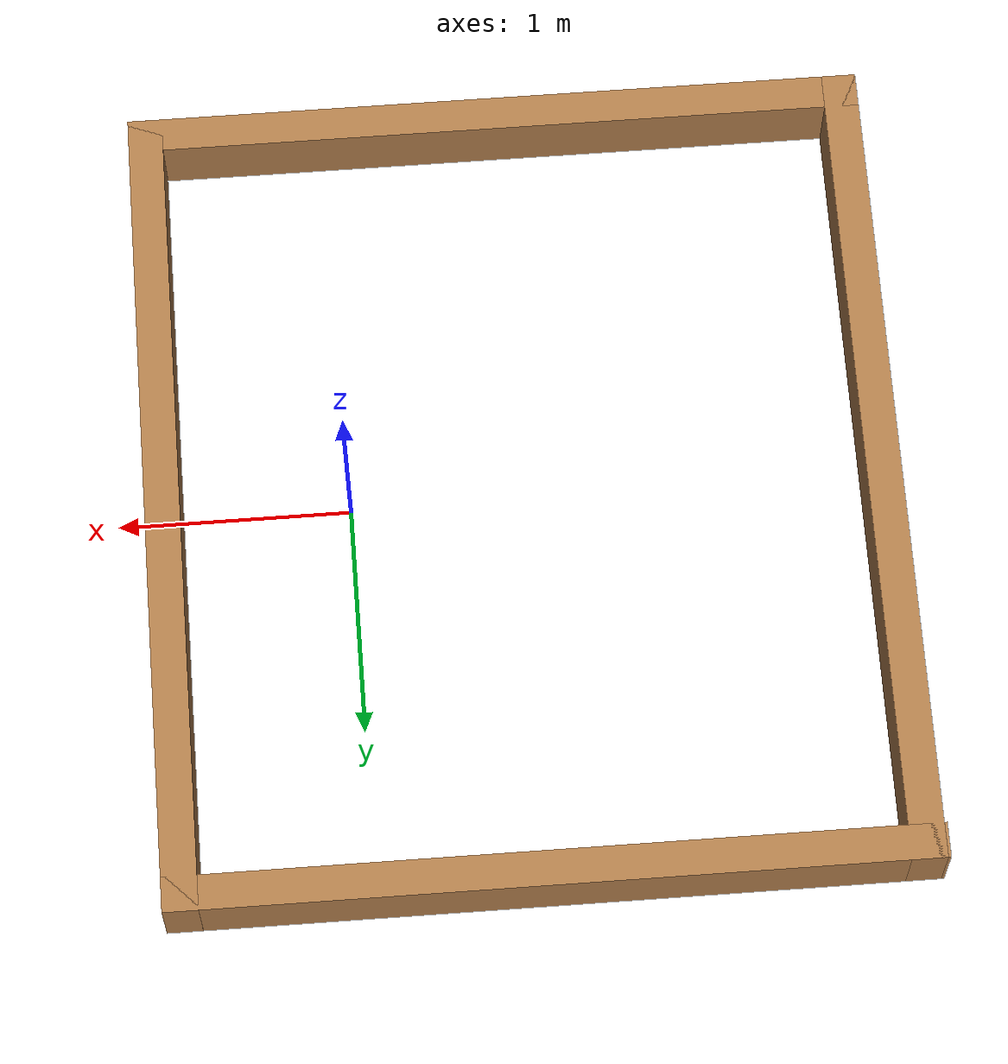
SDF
<?xml version='1.0'?>
<sdf version='1.7'>
  <model name='Arena'>
    <pose>-0.746 0.007 0 0 -0 0</pose>
    <link name='Wall_2'>
      <collision name='Wall_2_Collision'>
        <geometry>
          <box>
            <size>3.23208 0.15 0.304</size>
          </box>
        </geometry>
        <pose>0 0 0.152 0 -0 0</pose>
      </collision>
      <visual name='Wall_2_Visual'>
        <pose>0 0 0.152 0 -0 0</pose>
        <geometry>
          <box>
            <size>3.23208 0.15 0.304</size>
          </box>
        </geometry>
        <material>
          <script>
            <uri>file://media/materials/scripts/gazebo.material</uri>
            <name>Gazebo/Wood</name>
          </script>
          <ambient>1 1 1 1</ambient>
        </material>
        <meta>
          <layer>0</layer>
        </meta>
      </visual>
      <pose>0 1.735 0 0 -0 0</pose>
    </link>
    <link name='Wall_3'>
      <collision name='Wall_3_Collision'>
        <geometry>
          <box>
            <size>3.62021 0.15 0.304</size>
          </box>
        </geometry>
        <pose>0 0 0.152 0 -0 0</pose>
      </collision>
      <visual name='Wall_3_Visual'>
        <pose>0 0 0.152 0 -0 0</pose>
        <geometry>
          <box>
            <size>3.62021 0.15 0.304</size>
          </box>
        </geometry>
        <material>
          <script>
            <uri>file://media/materials/scripts/gazebo.material</uri>
            <name>Gazebo/Wood</name>
          </script>
          <ambient>1 1 1 1</ambient>
        </material>
        <meta>
          <layer>0</layer>
        </meta>
      </visual>
      <pose>1.541 0 0 0 -0 -1.5708</pose>
    </link>
    <link name='Wall_4'>
      <collision name='Wall_4_Collision'>
        <geometry>
          <box>
            <size>3.22 0.15 0.304</size>
          </box>
        </geometry>
        <pose>0 0 0.152 0 -0 0</pose>
      </collision>
      <visual name='Wall_4_Visual'>
        <pose>0 0 0.152 0 -0 0</pose>
        <geometry>
          <box>
            <size>3.22 0.15 0.304</size>
          </box>
        </geometry>
        <material>
          <script>
            <uri>file://media/materials/scripts/gazebo.material</uri>
            <name>Gazebo/Wood</name>
          </script>
          <ambient>1 1 1 1</ambient>
        </material>
        <meta>
          <layer>0</layer>
        </meta>
      </visual>
      <pose>0.006 -1.735 0 0 -0 3.14159</pose>
    </link>
    <link name='Wall_5'>
      <collision name='Wall_5_Collision'>
        <geometry>
          <box>
            <size>3.62001 0.15 0.304</size>
          </box>
        </geometry>
        <pose>0 0 0.152 0 -0 0</pose>
      </collision>
      <visual name='Wall_5_Visual'>
        <pose>0 0 0.152 0 -0 0</pose>
        <geometry>
          <box>
            <size>3.62001 0.15 0.304</size>
          </box>
        </geometry>
        <material>
          <script>
            <uri>file://media/materials/scripts/gazebo.material</uri>
            <name>Gazebo/Wood</name>
          </script>
          <ambient>1 1 1 1</ambient>
        </material>
        <meta>
          <layer>0</layer>
        </meta>
      </visual>
      <pose>-1.529 0 0 0 -0 1.5708</pose>
    </link>
    <static>1</static>
  </model>
</sdf>
